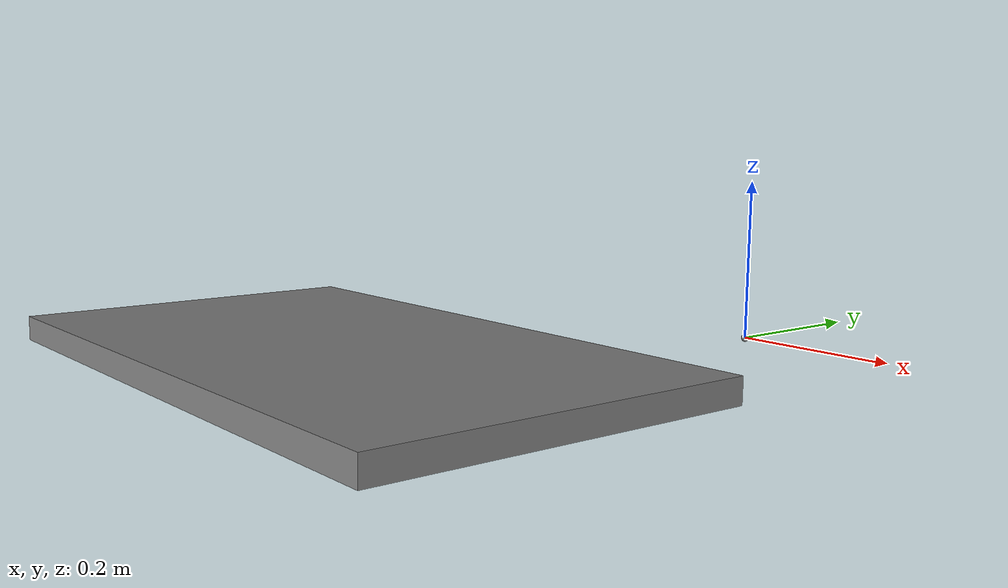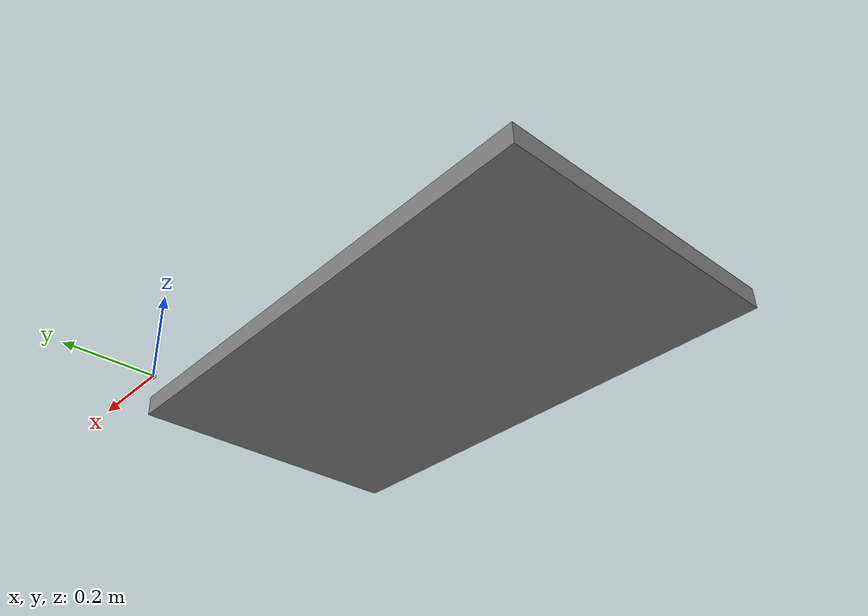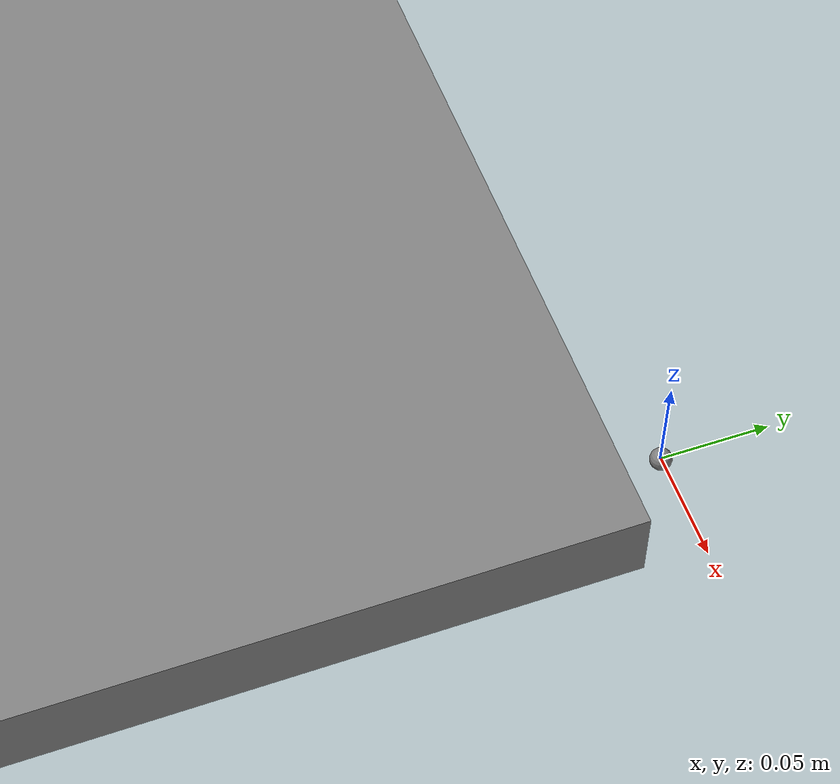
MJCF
<mujoco>
  <statistic meansize=".5"/>
  <worldbody>
    <site name="0"/>
    <light pos="0 0 1"/>
    <body name="1" pos="-.5 -.3 0">
      <freejoint/>
      <geom type="box" size=".5 .3 .02" pos="0 0 -.07"/>
    </body>
  </worldbody>

  <equality>
    <weld body1="1" anchor="0 0 0" solimp="0 0.96 0.01" torquescale="0.2"/>
  </equality>
</mujoco>
